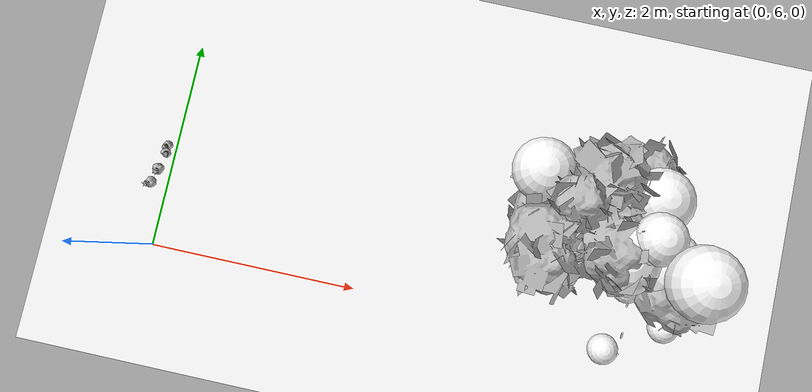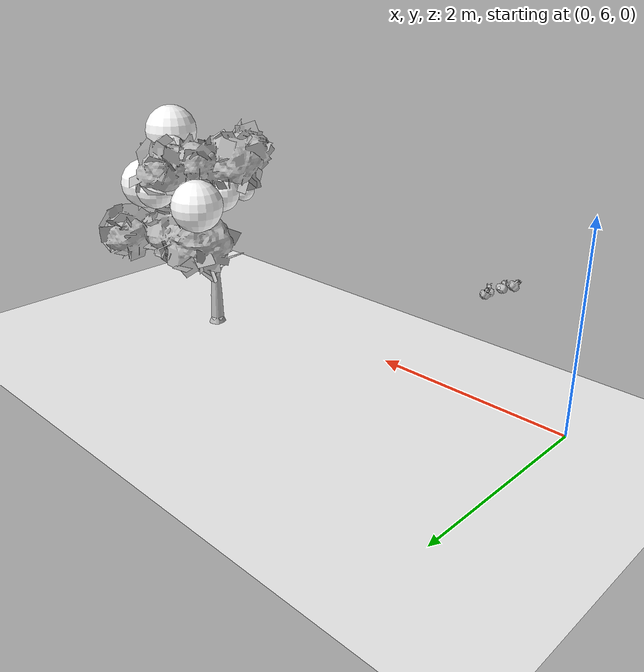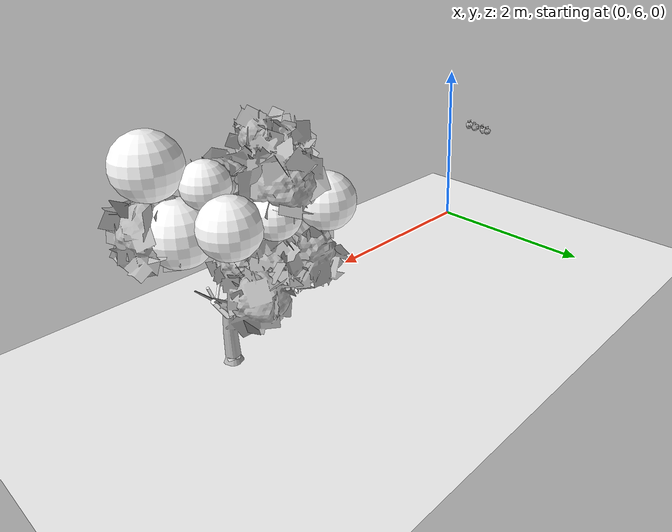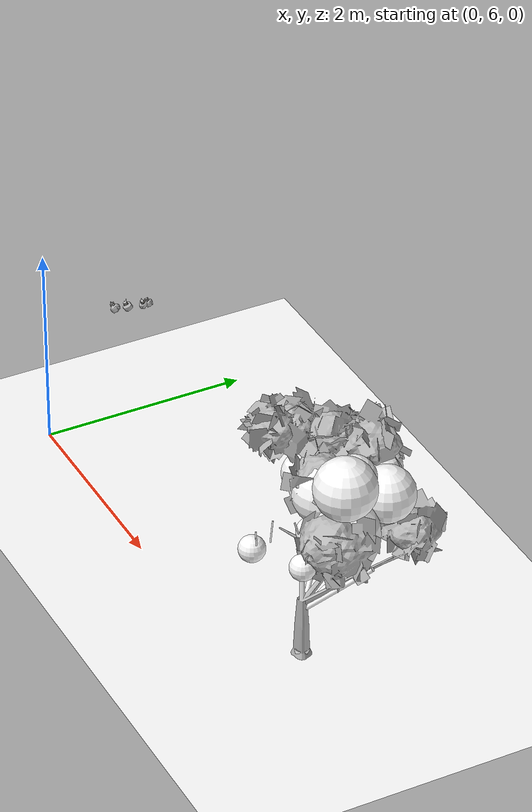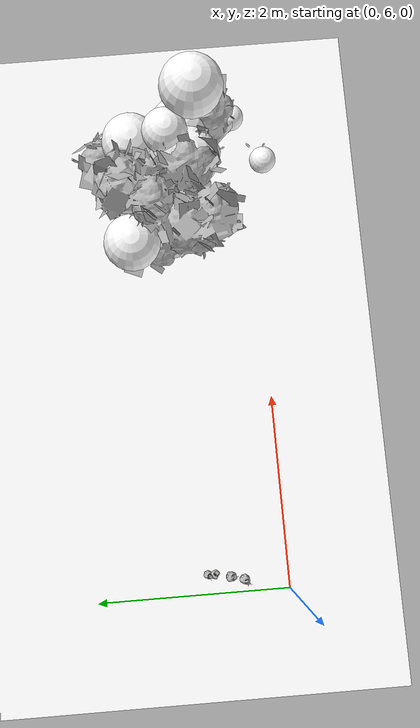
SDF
<sdf version="1.11">
 <world name="peach_orchard">
  <model name="ground">
   <static>true</static>
   <link name="link">
    <visual name="soil">
     <geometry><plane><normal>0 0 1</normal><size>32 22</size></plane></geometry>
     <material>
      <ambient>1 1 1 1</ambient>
      <diffuse>1 1 1 1</diffuse>
      <specular>0.1 0.1 0.1 1</specular>
      <pbr>
       <metal>
        <albedo_map>textures/soil_albedo.png</albedo_map>
        <normal_map type="tangent">textures/soil_normal.png</normal_map>
        <roughness>0.95</roughness>
        <metalness>0</metalness>
       </metal>
      </pbr>
     </material>
    </visual>
    <collision name="c_soil">
     <geometry><plane><normal>0 0 1</normal><size>32 22</size></plane></geometry>
    </collision>
   </link>
  </model>
  <model name="tree_r3_t6">
   <pose>4 6.6 0 0 0 0</pose>
   <static>true</static>
   <link name="link">
    <visual name="tree_mesh">
     <pose>0 0 0 0 0 0.230714</pose>
     <geometry>
      <mesh><uri>model://peach_sim/meshes/peach_tree_a.glb</uri><scale>1.05553 1.05553 1.05553</scale></mesh>
     </geometry>
    </visual>
    <visual name="trunk_0">
     <pose>0 0 0.144905 0 0 0</pose>
     <geometry><cylinder><radius>0.0476876</radius><length>0.28981</length></cylinder></geometry>
     <material>
      <ambient>1 1 1 1</ambient>
      <diffuse>1 1 1 1</diffuse>
      <specular>0.1 0.1 0.1 1</specular>
      <pbr>
       <metal>
        <albedo_map>textures/bark_albedo.png</albedo_map>
        <normal_map type="tangent">textures/bark_normal.png</normal_map>
        <roughness>0.9</roughness>
        <metalness>0</metalness>
       </metal>
      </pbr>
     </material>
    </visual>
    <collision name="c_trunk_0">
     <pose>0 0 0.144905 0 0 0</pose>
     <geometry><cylinder><radius>0.0476876</radius><length>0.28981</length></cylinder></geometry>
    </collision>
    <visual name="trunk_1">
     <pose>0 0 0.408369 0 0 0</pose>
     <geometry><cylinder><radius>0.034335</radius><length>0.237117</length></cylinder></geometry>
     <material>
      <ambient>1 1 1 1</ambient>
      <diffuse>1 1 1 1</diffuse>
      <specular>0.1 0.1 0.1 1</specular>
      <pbr>
       <metal>
        <albedo_map>textures/bark_albedo.png</albedo_map>
        <normal_map type="tangent">textures/bark_normal.png</normal_map>
        <roughness>0.9</roughness>
        <metalness>0</metalness>
       </metal>
      </pbr>
     </material>
    </visual>
    <collision name="c_trunk_1">
     <pose>0 0 0.408369 0 0 0</pose>
     <geometry><cylinder><radius>0.034335</radius><length>0.237117</length></cylinder></geometry>
    </collision>
    <visual name="root_flare">
     <pose>0 0 0.035 0 0 0</pose>
     <geometry><cylinder><radius>0.069147</radius><length>0.07</length></cylinder></geometry>
     <material>
      <ambient>1 1 1 1</ambient>
      <diffuse>1 1 1 1</diffuse>
      <specular>0.1 0.1 0.1 1</specular>
      <pbr>
       <metal>
        <albedo_map>textures/bark_albedo.png</albedo_map>
        <normal_map type="tangent">textures/bark_normal.png</normal_map>
        <roughness>0.95</roughness>
        <metalness>0</metalness>
       </metal>
      </pbr>
     </material>
    </visual>
    <visual name="scaffold_0">
     <pose>0.0549542 0.28024 0.76478 0 0.795247 1.37716</pose>
     <geometry><cylinder><radius>0.022</radius><length>0.799896</length></cylinder></geometry>
     <material>
      <ambient>1 1 1 1</ambient>
      <diffuse>1 1 1 1</diffuse>
      <specular>0.1 0.1 0.1 1</specular>
      <pbr>
       <metal>
        <albedo_map>textures/bark_albedo.png</albedo_map>
        <normal_map type="tangent">textures/bark_normal.png</normal_map>
        <roughness>0.9</roughness>
        <metalness>0</metalness>
       </metal>
      </pbr>
     </material>
    </visual>
    <collision name="c_scaffold_0">
     <pose>0.0549542 0.28024 0.76478 0 0.795247 1.37716</pose>
     <geometry><cylinder><radius>0.022</radius><length>0.799896</length></cylinder></geometry>
    </collision>
    <visual name="branchlet_0_0">
     <pose>0.121595 0.448033 0.940291 0 0.814581 1.0511</pose>
     <geometry><cylinder><radius>0.012</radius><length>0.284172</length></cylinder></geometry>
     <material>
      <ambient>1 1 1 1</ambient>
      <diffuse>1 1 1 1</diffuse>
      <specular>0.1 0.1 0.1 1</specular>
      <pbr>
       <metal>
        <albedo_map>textures/bark_albedo.png</albedo_map>
        <normal_map type="tangent">textures/bark_normal.png</normal_map>
        <roughness>0.9</roughness>
        <metalness>0</metalness>
       </metal>
      </pbr>
     </material>
    </visual>
    <visual name="branchlet_0_1">
     <pose>0.124138 0.550145 1.07437 0 0.596018 1.15059</pose>
     <geometry><cylinder><radius>0.012</radius><length>0.253022</length></cylinder></geometry>
     <material>
      <ambient>1 1 1 1</ambient>
      <diffuse>1 1 1 1</diffuse>
      <specular>0.1 0.1 0.1 1</specular>
      <pbr>
       <metal>
        <albedo_map>textures/bark_albedo.png</albedo_map>
        <normal_map type="tangent">textures/bark_normal.png</normal_map>
        <roughness>0.9</roughness>
        <metalness>0</metalness>
       </metal>
      </pbr>
     </material>
    </visual>
    <visual name="scaffold_1">
     <pose>0.197207 0.236418 0.760982 0 0.839552 0.875579</pose>
     <geometry><cylinder><radius>0.022</radius><length>0.827225</length></cylinder></geometry>
     <material>
      <ambient>1 1 1 1</ambient>
      <diffuse>1 1 1 1</diffuse>
      <specular>0.1 0.1 0.1 1</specular>
      <pbr>
       <metal>
        <albedo_map>textures/bark_albedo.png</albedo_map>
        <normal_map type="tangent">textures/bark_normal.png</normal_map>
        <roughness>0.9</roughness>
        <metalness>0</metalness>
       </metal>
      </pbr>
     </material>
    </visual>
    <collision name="c_scaffold_1">
     <pose>0.197207 0.236418 0.760982 0 0.839552 0.875579</pose>
     <geometry><cylinder><radius>0.022</radius><length>0.827225</length></cylinder></geometry>
    </collision>
    <visual name="branchlet_1_0">
     <pose>0.346318 0.384959 1.02087 0 0.445768 0.532816</pose>
     <geometry><cylinder><radius>0.012</radius><length>0.267163</length></cylinder></geometry>
     <material>
      <ambient>1 1 1 1</ambient>
      <diffuse>1 1 1 1</diffuse>
      <specular>0.1 0.1 0.1 1</specular>
      <pbr>
       <metal>
        <albedo_map>textures/bark_albedo.png</albedo_map>
        <normal_map type="tangent">textures/bark_normal.png</normal_map>
        <roughness>0.9</roughness>
        <metalness>0</metalness>
       </metal>
      </pbr>
     </material>
    </visual>
    <visual name="branchlet_1_1">
     <pose>0.243844 0.323391 1.06232 0 0.821479 -2.43506</pose>
     <geometry><cylinder><radius>0.012</radius><length>0.323062</length></cylinder></geometry>
     <material>
      <ambient>1 1 1 1</ambient>
      <diffuse>1 1 1 1</diffuse>
      <specular>0.1 0.1 0.1 1</specular>
      <pbr>
       <metal>
        <albedo_map>textures/bark_albedo.png</albedo_map>
        <normal_map type="tangent">textures/bark_normal.png</normal_map>
        <roughness>0.9</roughness>
        <metalness>0</metalness>
       </metal>
      </pbr>
     </material>
    </visual>
    <visual name="scaffold_2">
     <pose>-0.242303 0.24509 0.757369 0 0.901601 2.35048</pose>
     <geometry><cylinder><radius>0.022</radius><length>0.878836</length></cylinder></geometry>
     <material>
      <ambient>1 1 1 1</ambient>
      <diffuse>1 1 1 1</diffuse>
      <specular>0.1 0.1 0.1 1</specular>
      <pbr>
       <metal>
        <albedo_map>textures/bark_albedo.png</albedo_map>
        <normal_map type="tangent">textures/bark_normal.png</normal_map>
        <roughness>0.9</roughness>
        <metalness>0</metalness>
       </metal>
      </pbr>
     </material>
    </visual>
    <collision name="c_scaffold_2">
     <pose>-0.242303 0.24509 0.757369 0 0.901601 2.35048</pose>
     <geometry><cylinder><radius>0.022</radius><length>0.878836</length></cylinder></geometry>
    </collision>
    <visual name="branchlet_2_0">
     <pose>-0.299877 0.182586 0.791454 0 0.976141 -2.70042</pose>
     <geometry><cylinder><radius>0.012</radius><length>0.217286</length></cylinder></geometry>
     <material>
      <ambient>1 1 1 1</ambient>
      <diffuse>1 1 1 1</diffuse>
      <specular>0.1 0.1 0.1 1</specular>
      <pbr>
       <metal>
        <albedo_map>textures/bark_albedo.png</albedo_map>
        <normal_map type="tangent">textures/bark_normal.png</normal_map>
        <roughness>0.9</roughness>
        <metalness>0</metalness>
       </metal>
      </pbr>
     </material>
    </visual>
    <visual name="branchlet_2_1">
     <pose>-0.342231 0.542261 0.917137 0 1.70491 1.15496</pose>
     <geometry><cylinder><radius>0.012</radius><length>0.299038</length></cylinder></geometry>
     <material>
      <ambient>1 1 1 1</ambient>
      <diffuse>1 1 1 1</diffuse>
      <specular>0.1 0.1 0.1 1</specular>
      <pbr>
       <metal>
        <albedo_map>textures/bark_albedo.png</albedo_map>
        <normal_map type="tangent">textures/bark_normal.png</normal_map>
        <roughness>0.9</roughness>
        <metalness>0</metalness>
       </metal>
      </pbr>
     </material>
    </visual>
    <visual name="branchlet_2_2">
     <pose>-0.289051 0.325032 1.0452 0 0.790304 -0.602917</pose>
     <geometry><cylinder><radius>0.012</radius><length>0.345411</length></cylinder></geometry>
     <material>
      <ambient>1 1 1 1</ambient>
      <diffuse>1 1 1 1</diffuse>
      <specular>0.1 0.1 0.1 1</specular>
      <pbr>
       <metal>
        <albedo_map>textures/bark_albedo.png</albedo_map>
        <normal_map type="tangent">textures/bark_normal.png</normal_map>
        <roughness>0.9</roughness>
        <metalness>0</metalness>
       </metal>
      </pbr>
     </material>
    </visual>
    <visual name="canopy_0">
     <pose>0.0739487 0.153682 1.75011 0 0 0</pose>
     <geometry><sphere><radius>0.280064</radius></sphere></geometry>
     <material>
      <ambient>1 1 1 1</ambient>
      <diffuse>1 1 1 1</diffuse>
      <specular>0.1 0.1 0.1 1</specular>
      <pbr>
       <metal>
        <albedo_map>textures/leaf_albedo.png</albedo_map>
        <normal_map type="tangent">textures/leaf_normal.png</normal_map>
        <roughness>0.85</roughness>
        <metalness>0</metalness>
       </metal>
      </pbr>
     </material>
    </visual>
    <collision name="c_canopy_0">
     <pose>0.0739487 0.153682 1.75011 0 0 0</pose>
     <geometry><sphere><radius>0.280064</radius></sphere></geometry>
    </collision>
    <visual name="canopy_1">
     <pose>0.571218 0.0911855 2.14088 0 0 0</pose>
     <geometry><sphere><radius>0.280974</radius></sphere></geometry>
     <material>
      <ambient>1 1 1 1</ambient>
      <diffuse>1 1 1 1</diffuse>
      <specular>0.1 0.1 0.1 1</specular>
      <pbr>
       <metal>
        <albedo_map>textures/leaf_albedo.png</albedo_map>
        <normal_map type="tangent">textures/leaf_normal.png</normal_map>
        <roughness>0.85</roughness>
        <metalness>0</metalness>
       </metal>
      </pbr>
     </material>
    </visual>
    <collision name="c_canopy_1">
     <pose>0.571218 0.0911855 2.14088 0 0 0</pose>
     <geometry><sphere><radius>0.280974</radius></sphere></geometry>
    </collision>
    <visual name="canopy_2">
     <pose>-0.386803 0.205086 1.64155 0 0 0</pose>
     <geometry><sphere><radius>0.197356</radius></sphere></geometry>
     <material>
      <ambient>1 1 1 1</ambient>
      <diffuse>1 1 1 1</diffuse>
      <specular>0.1 0.1 0.1 1</specular>
      <pbr>
       <metal>
        <albedo_map>textures/leaf_albedo.png</albedo_map>
        <normal_map type="tangent">textures/leaf_normal.png</normal_map>
        <roughness>0.85</roughness>
        <metalness>0</metalness>
       </metal>
      </pbr>
     </material>
    </visual>
    <collision name="c_canopy_2">
     <pose>-0.386803 0.205086 1.64155 0 0 0</pose>
     <geometry><sphere><radius>0.197356</radius></sphere></geometry>
    </collision>
    <visual name="canopy_3">
     <pose>-0.0625418 0.774826 1.7346 0 0 0</pose>
     <geometry><sphere><radius>0.20344</radius></sphere></geometry>
     <material>
      <ambient>1 1 1 1</ambient>
      <diffuse>1 1 1 1</diffuse>
      <specular>0.1 0.1 0.1 1</specular>
      <pbr>
       <metal>
        <albedo_map>textures/leaf_albedo.png</albedo_map>
        <normal_map type="tangent">textures/leaf_normal.png</normal_map>
        <roughness>0.85</roughness>
        <metalness>0</metalness>
       </metal>
      </pbr>
     </material>
    </visual>
    <visual name="canopy_4">
     <pose>0.128291 0.253846 1.8358 0 0 0</pose>
     <geometry><sphere><radius>0.209378</radius></sphere></geometry>
     <material>
      <ambient>1 1 1 1</ambient>
      <diffuse>1 1 1 1</diffuse>
      <specular>0.1 0.1 0.1 1</specular>
      <pbr>
       <metal>
        <albedo_map>textures/leaf_albedo.png</albedo_map>
        <normal_map type="tangent">textures/leaf_normal.png</normal_map>
        <roughness>0.85</roughness>
        <metalness>0</metalness>
       </metal>
      </pbr>
     </material>
    </visual>
    <visual name="canopy_5">
     <pose>-0.633509 0.709671 1.65308 0 0 0</pose>
     <geometry><sphere><radius>0.257227</radius></sphere></geometry>
     <material>
      <ambient>1 1 1 1</ambient>
      <diffuse>1 1 1 1</diffuse>
      <specular>0.1 0.1 0.1 1</specular>
      <pbr>
       <metal>
        <albedo_map>textures/leaf_albedo.png</albedo_map>
        <normal_map type="tangent">textures/leaf_normal.png</normal_map>
        <roughness>0.85</roughness>
        <metalness>0</metalness>
       </metal>
      </pbr>
     </material>
    </visual>
    <visual name="canopy_6">
     <pose>0.258693 0.347002 1.96673 0 0 0</pose>
     <geometry><sphere><radius>0.201252</radius></sphere></geometry>
     <material>
      <ambient>1 1 1 1</ambient>
      <diffuse>1 1 1 1</diffuse>
      <specular>0.1 0.1 0.1 1</specular>
      <pbr>
       <metal>
        <albedo_map>textures/leaf_albedo.png</albedo_map>
        <normal_map type="tangent">textures/leaf_normal.png</normal_map>
        <roughness>0.85</roughness>
        <metalness>0</metalness>
       </metal>
      </pbr>
     </material>
    </visual>
    <visual name="canopy_7">
     <pose>0.437204 0.19236 1.56628 0 0 0</pose>
     <geometry><sphere><radius>0.28926</radius></sphere></geometry>
     <material>
      <ambient>1 1 1 1</ambient>
      <diffuse>1 1 1 1</diffuse>
      <specular>0.1 0.1 0.1 1</specular>
      <pbr>
       <metal>
        <albedo_map>textures/leaf_albedo.png</albedo_map>
        <normal_map type="tangent">textures/leaf_normal.png</normal_map>
        <roughness>0.85</roughness>
        <metalness>0</metalness>
       </metal>
      </pbr>
     </material>
    </visual>
    <visual name="canopy_8">
     <pose>-0.30558 0.510881 1.7245 0 0 0</pose>
     <geometry><sphere><radius>0.228986</radius></sphere></geometry>
     <material>
      <ambient>1 1 1 1</ambient>
      <diffuse>1 1 1 1</diffuse>
      <specular>0.1 0.1 0.1 1</specular>
      <pbr>
       <metal>
        <albedo_map>textures/leaf_albedo.png</albedo_map>
        <normal_map type="tangent">textures/leaf_normal.png</normal_map>
        <roughness>0.85</roughness>
        <metalness>0</metalness>
       </metal>
      </pbr>
     </material>
    </visual>
    <visual name="canopy_9">
     <pose>0.281778 0.658787 1.70833 0 0 0</pose>
     <geometry><sphere><radius>0.257571</radius></sphere></geometry>
     <material>
      <ambient>1 1 1 1</ambient>
      <diffuse>1 1 1 1</diffuse>
      <specular>0.1 0.1 0.1 1</specular>
      <pbr>
       <metal>
        <albedo_map>textures/leaf_albedo.png</albedo_map>
        <normal_map type="tangent">textures/leaf_normal.png</normal_map>
        <roughness>0.85</roughness>
        <metalness>0</metalness>
       </metal>
      </pbr>
     </material>
    </visual>
    <visual name="foliage_0">
     <pose>0.202653 -0.0394276 1.49223 0 0 0</pose>
     <geometry><sphere><radius>0.127067</radius></sphere></geometry>
     <material>
      <ambient>1 1 1 1</ambient>
      <diffuse>1 1 1 1</diffuse>
      <specular>0.1 0.1 0.1 1</specular>
      <pbr>
       <metal>
        <albedo_map>textures/leaf_albedo.png</albedo_map>
        <normal_map type="tangent">textures/leaf_normal.png</normal_map>
        <roughness>0.85</roughness>
        <metalness>0</metalness>
       </metal>
      </pbr>
     </material>
    </visual>
    <visual name="foliage_4">
     <pose>0.11673 -0.552518 1.43104 0 0 0</pose>
     <geometry><sphere><radius>0.121667</radius></sphere></geometry>
     <material>
      <ambient>1 1 1 1</ambient>
      <diffuse>1 1 1 1</diffuse>
      <specular>0.1 0.1 0.1 1</specular>
      <pbr>
       <metal>
        <albedo_map>textures/leaf_albedo.png</albedo_map>
        <normal_map type="tangent">textures/leaf_normal.png</normal_map>
        <roughness>0.85</roughness>
        <metalness>0</metalness>
       </metal>
      </pbr>
     </material>
    </visual>
    <visual name="foliage_8">
     <pose>0.54884 -0.291175 1.4348 0 0 0</pose>
     <geometry><sphere><radius>0.1204</radius></sphere></geometry>
     <material>
      <ambient>1 1 1 1</ambient>
      <diffuse>1 1 1 1</diffuse>
      <specular>0.1 0.1 0.1 1</specular>
      <pbr>
       <metal>
        <albedo_map>textures/leaf_albedo.png</albedo_map>
        <normal_map type="tangent">textures/leaf_normal.png</normal_map>
        <roughness>0.85</roughness>
        <metalness>0</metalness>
       </metal>
      </pbr>
     </material>
    </visual>
    <visual name="twig_0">
     <pose>0.188326 0.0460258 1.58992 0 0.552999 -2.84251</pose>
     <geometry><cylinder><radius>0.007</radius><length>0.161125</length></cylinder></geometry>
     <material>
      <ambient>1 1 1 1</ambient>
      <diffuse>1 1 1 1</diffuse>
      <specular>0.1 0.1 0.1 1</specular>
      <pbr>
       <metal>
        <albedo_map>textures/bark_albedo.png</albedo_map>
        <normal_map type="tangent">textures/bark_normal.png</normal_map>
        <roughness>0.9</roughness>
        <metalness>0</metalness>
       </metal>
      </pbr>
     </material>
    </visual>
    <visual name="twig_1">
     <pose>0.203287 0.0224686 1.60252 0 0.302157 2.39298</pose>
     <geometry><cylinder><radius>0.007</radius><length>0.198341</length></cylinder></geometry>
     <material>
      <ambient>1 1 1 1</ambient>
      <diffuse>1 1 1 1</diffuse>
      <specular>0.1 0.1 0.1 1</specular>
      <pbr>
       <metal>
        <albedo_map>textures/bark_albedo.png</albedo_map>
        <normal_map type="tangent">textures/bark_normal.png</normal_map>
        <roughness>0.9</roughness>
        <metalness>0</metalness>
       </metal>
      </pbr>
     </material>
    </visual>
    <visual name="twig_2">
     <pose>0.206416 -0.173066 1.57238 0 0.335356 -2.44769</pose>
     <geometry><cylinder><radius>0.007</radius><length>0.114403</length></cylinder></geometry>
     <material>
      <ambient>1 1 1 1</ambient>
      <diffuse>1 1 1 1</diffuse>
      <specular>0.1 0.1 0.1 1</specular>
      <pbr>
       <metal>
        <albedo_map>textures/bark_albedo.png</albedo_map>
        <normal_map type="tangent">textures/bark_normal.png</normal_map>
        <roughness>0.9</roughness>
        <metalness>0</metalness>
       </metal>
      </pbr>
     </material>
    </visual>
    <visual name="twig_3">
     <pose>0.198853 -0.408426 1.61497 0 0.3291 2.34537</pose>
     <geometry><cylinder><radius>0.007</radius><length>0.192631</length></cylinder></geometry>
     <material>
      <ambient>1 1 1 1</ambient>
      <diffuse>1 1 1 1</diffuse>
      <specular>0.1 0.1 0.1 1</specular>
      <pbr>
       <metal>
        <albedo_map>textures/bark_albedo.png</albedo_map>
        <normal_map type="tangent">textures/bark_normal.png</normal_map>
        <roughness>0.9</roughness>
        <metalness>0</metalness>
       </metal>
      </pbr>
     </material>
    </visual>
    <visual name="twig_4">
     <pose>0.199121 -0.555342 1.59234 0 0.226673 2.91488</pose>
     <geometry><cylinder><radius>0.007</radius><length>0.126423</length></cylinder></geometry>
     <material>
      <ambient>1 1 1 1</ambient>
      <diffuse>1 1 1 1</diffuse>
      <specular>0.1 0.1 0.1 1</specular>
      <pbr>
       <metal>
        <albedo_map>textures/bark_albedo.png</albedo_map>
        <normal_map type="tangent">textures/bark_normal.png</normal_map>
        <roughness>0.9</roughness>
        <metalness>0</metalness>
       </metal>
      </pbr>
     </material>
    </visual>
    <visual name="twig_5">
     <pose>0.494604 0.195962 1.55487 0 0.644193 -2.79811</pose>
     <geometry><cylinder><radius>0.007</radius><length>0.131424</length></cylinder></geometry>
     <material>
      <ambient>1 1 1 1</ambient>
      <diffuse>1 1 1 1</diffuse>
      <specular>0.1 0.1 0.1 1</specular>
      <pbr>
       <metal>
        <albedo_map>textures/bark_albedo.png</albedo_map>
        <normal_map type="tangent">textures/bark_normal.png</normal_map>
        <roughness>0.9</roughness>
        <metalness>0</metalness>
       </metal>
      </pbr>
     </material>
    </visual>
    <visual name="twig_6">
     <pose>0.510922 0.0382512 1.59649 0 0.548234 2.9313</pose>
     <geometry><cylinder><radius>0.007</radius><length>0.161249</length></cylinder></geometry>
     <material>
      <ambient>1 1 1 1</ambient>
      <diffuse>1 1 1 1</diffuse>
      <specular>0.1 0.1 0.1 1</specular>
      <pbr>
       <metal>
        <albedo_map>textures/bark_albedo.png</albedo_map>
        <normal_map type="tangent">textures/bark_normal.png</normal_map>
        <roughness>0.9</roughness>
        <metalness>0</metalness>
       </metal>
      </pbr>
     </material>
    </visual>
    <visual name="twig_7">
     <pose>0.477055 0.00433739 1.59142 0 0.661089 2.97656</pose>
     <geometry><cylinder><radius>0.007</radius><length>0.219505</length></cylinder></geometry>
     <material>
      <ambient>1 1 1 1</ambient>
      <diffuse>1 1 1 1</diffuse>
      <specular>0.1 0.1 0.1 1</specular>
      <pbr>
       <metal>
        <albedo_map>textures/bark_albedo.png</albedo_map>
        <normal_map type="tangent">textures/bark_normal.png</normal_map>
        <roughness>0.9</roughness>
        <metalness>0</metalness>
       </metal>
      </pbr>
     </material>
    </visual>
    <visual name="twig_8">
     <pose>0.515582 -0.222629 1.59339 0 0.486278 -2.73368</pose>
     <geometry><cylinder><radius>0.007</radius><length>0.157715</length></cylinder></geometry>
     <material>
      <ambient>1 1 1 1</ambient>
      <diffuse>1 1 1 1</diffuse>
      <specular>0.1 0.1 0.1 1</specular>
      <pbr>
       <metal>
        <albedo_map>textures/bark_albedo.png</albedo_map>
        <normal_map type="tangent">textures/bark_normal.png</normal_map>
        <roughness>0.9</roughness>
        <metalness>0</metalness>
       </metal>
      </pbr>
     </material>
    </visual>
   </link>
  </model>
  <model name="peach_tree_r2_t6_02">
   <pose>0.355941 6.57664 1.45 0 0.703116 -2.42664</pose>
   <static>true</static>
   <link name="bag">
    <visual name="bag_mesh">
     <pose>0 0 0.0440708 0 0 -0</pose>
     <geometry>
      <mesh><uri>model://peach_sim/meshes/bagged_peach.glb</uri><scale>1.07991 1.21132 1.00161</scale></mesh>
     </geometry>
    </visual>
    <visual name="body">
     <pose>0 0 0.0260708 0 0 0</pose>
     <geometry><ellipsoid><radii>0.0404967 0.0314944 0.0281565</radii></ellipsoid></geometry>
     <material>
      <ambient>1 1 1 1</ambient>
      <diffuse>1 1 1 1</diffuse>
      <specular>0.1 0.1 0.1 1</specular>
      <pbr>
       <metal>
        <albedo_map>textures/paper_bag_albedo.png</albedo_map>
        <normal_map type="tangent">textures/paper_bag_normal.png</normal_map>
        <roughness>0.72</roughness>
        <metalness>0</metalness>
       </metal>
      </pbr>
     </material>
    </visual>
    <visual name="bottom_fold">
     <pose>0 0 0.012 0 0 0.35</pose>
     <geometry><box><size>0.0627699 0.0362186 0.022</size></box></geometry>
     <material>
      <ambient>1 1 1 1</ambient>
      <diffuse>1 1 1 1</diffuse>
      <specular>0.1 0.1 0.1 1</specular>
      <pbr>
       <metal>
        <albedo_map>textures/paper_bag_albedo.png</albedo_map>
        <normal_map type="tangent">textures/paper_bag_normal.png</normal_map>
        <roughness>0.8</roughness>
        <metalness>0</metalness>
       </metal>
      </pbr>
     </material>
    </visual>
    <visual name="fruit">
     <pose>0 0 0.0209689 0 0 0</pose>
     <geometry><sphere><radius>0.0280476</radius></sphere></geometry>
     <material>
      <ambient>1 1 1 1</ambient>
      <diffuse>1 1 1 1</diffuse>
      <specular>0.1 0.1 0.1 1</specular>
      <pbr>
       <metal>
        <albedo_map>textures/fruit_skin_albedo.png</albedo_map>
        <normal_map type="tangent">textures/fruit_skin_normal.png</normal_map>
        <roughness>0.55</roughness>
        <metalness>0</metalness>
       </metal>
      </pbr>
     </material>
    </visual>
    <visual name="neck">
     <pose>0 0 0.0611416 0 0 0</pose>
     <geometry><cylinder><radius>0.013</radius><length>0.018</length></cylinder></geometry>
     <material>
      <ambient>1 1 1 1</ambient>
      <diffuse>1 1 1 1</diffuse>
      <specular>0.1 0.1 0.1 1</specular>
      <pbr>
       <metal>
        <albedo_map>textures/paper_bag_albedo.png</albedo_map>
        <normal_map type="tangent">textures/paper_bag_normal.png</normal_map>
        <roughness>0.75</roughness>
        <metalness>0</metalness>
       </metal>
      </pbr>
     </material>
    </visual>
    <visual name="gather">
     <pose>0 0 0.0421416 0 0 0</pose>
     <geometry><cylinder><radius>0.019</radius><length>0.02</length></cylinder></geometry>
     <material>
      <ambient>1 1 1 1</ambient>
      <diffuse>1 1 1 1</diffuse>
      <specular>0.1 0.1 0.1 1</specular>
      <pbr>
       <metal>
        <albedo_map>textures/paper_bag_albedo.png</albedo_map>
        <normal_map type="tangent">textures/paper_bag_normal.png</normal_map>
        <roughness>0.8</roughness>
        <metalness>0</metalness>
       </metal>
      </pbr>
     </material>
    </visual>
    <visual name="inner_paper">
     <pose>0 0 0.0661416 0 0 0</pose>
     <geometry><cylinder><radius>0.01</radius><length>0.008</length></cylinder></geometry>
     <material>
      <ambient>0.180392 0.14902 0.133333 1</ambient>
      <diffuse>0.180392 0.14902 0.133333 1</diffuse>
      <specular>0.1 0.1 0.1 1</specular>
     </material>
    </visual>
    <visual name="wire_0">
     <pose>0 0 0.0561416 0 0 0</pose>
     <geometry><cylinder><radius>0.0205</radius><length>0.0035</length></cylinder></geometry>
     <material>
      <ambient>0.25 0.25 0.25 1</ambient>
      <diffuse>0.25 0.25 0.25 1</diffuse>
      <specular>0.1 0.1 0.1 1</specular>
     </material>
    </visual>
    <visual name="wire_1">
     <pose>0 0 0.0631416 0 0 0</pose>
     <geometry><cylinder><radius>0.0205</radius><length>0.0035</length></cylinder></geometry>
     <material>
      <ambient>0.25 0.25 0.25 1</ambient>
      <diffuse>0.25 0.25 0.25 1</diffuse>
      <specular>0.1 0.1 0.1 1</specular>
     </material>
    </visual>
    <visual name="wire_tail">
     <pose>0.01 0 0.0641416 0 0.521618 0</pose>
     <geometry><cylinder><radius>0.0012</radius><length>0.026</length></cylinder></geometry>
     <material>
      <ambient>0.25 0.25 0.25 1</ambient>
      <diffuse>0.25 0.25 0.25 1</diffuse>
      <specular>0.1 0.1 0.1 1</specular>
     </material>
    </visual>
    <collision name="c_body">
     <pose>0 0 0.0260708 0 0 0</pose>
     <geometry><cylinder><radius>0.0404967</radius><length>0.0521416</length></cylinder></geometry>
    </collision>
   </link>
  </model>
  <model name="peach_tree_r2_t6_03">
   <pose>0.375185 6.6937 1.45 0 0.49428 -1.68655</pose>
   <static>true</static>
   <link name="bag">
    <visual name="bag_mesh">
     <pose>0 0 0.0457944 0 0 -0</pose>
     <geometry>
      <mesh><uri>model://peach_sim/meshes/bagged_peach.glb</uri><scale>1.08459 1.23427 1.04078</scale></mesh>
     </geometry>
    </visual>
    <visual name="body">
     <pose>0 0 0.0277944 0 0 0</pose>
     <geometry><ellipsoid><radii>0.0406722 0.032091 0.0300179</radii></ellipsoid></geometry>
     <material>
      <ambient>1 1 1 1</ambient>
      <diffuse>1 1 1 1</diffuse>
      <specular>0.1 0.1 0.1 1</specular>
      <pbr>
       <metal>
        <albedo_map>textures/paper_bag_albedo.png</albedo_map>
        <normal_map type="tangent">textures/paper_bag_normal.png</normal_map>
        <roughness>0.72</roughness>
        <metalness>0</metalness>
       </metal>
      </pbr>
     </material>
    </visual>
    <visual name="bottom_fold">
     <pose>0 0 0.012 0 0 0.35</pose>
     <geometry><box><size>0.0630419 0.0369046 0.022</size></box></geometry>
     <material>
      <ambient>1 1 1 1</ambient>
      <diffuse>1 1 1 1</diffuse>
      <specular>0.1 0.1 0.1 1</specular>
      <pbr>
       <metal>
        <albedo_map>textures/paper_bag_albedo.png</albedo_map>
        <normal_map type="tangent">textures/paper_bag_normal.png</normal_map>
        <roughness>0.8</roughness>
        <metalness>0</metalness>
       </metal>
      </pbr>
     </material>
    </visual>
    <visual name="fruit">
     <pose>0 0 0.0198932 0 0 0</pose>
     <geometry><sphere><radius>0.026929</radius></sphere></geometry>
     <material>
      <ambient>1 1 1 1</ambient>
      <diffuse>1 1 1 1</diffuse>
      <specular>0.1 0.1 0.1 1</specular>
      <pbr>
       <metal>
        <albedo_map>textures/fruit_skin_albedo.png</albedo_map>
        <normal_map type="tangent">textures/fruit_skin_normal.png</normal_map>
        <roughness>0.55</roughness>
        <metalness>0</metalness>
       </metal>
      </pbr>
     </material>
    </visual>
    <visual name="neck">
     <pose>0 0 0.0645887 0 0 0</pose>
     <geometry><cylinder><radius>0.013</radius><length>0.018</length></cylinder></geometry>
     <material>
      <ambient>1 1 1 1</ambient>
      <diffuse>1 1 1 1</diffuse>
      <specular>0.1 0.1 0.1 1</specular>
      <pbr>
       <metal>
        <albedo_map>textures/paper_bag_albedo.png</albedo_map>
        <normal_map type="tangent">textures/paper_bag_normal.png</normal_map>
        <roughness>0.75</roughness>
        <metalness>0</metalness>
       </metal>
      </pbr>
     </material>
    </visual>
    <visual name="gather">
     <pose>0 0 0.0455887 0 0 0</pose>
     <geometry><cylinder><radius>0.019</radius><length>0.02</length></cylinder></geometry>
     <material>
      <ambient>1 1 1 1</ambient>
      <diffuse>1 1 1 1</diffuse>
      <specular>0.1 0.1 0.1 1</specular>
      <pbr>
       <metal>
        <albedo_map>textures/paper_bag_albedo.png</albedo_map>
        <normal_map type="tangent">textures/paper_bag_normal.png</normal_map>
        <roughness>0.8</roughness>
        <metalness>0</metalness>
       </metal>
      </pbr>
     </material>
    </visual>
    <visual name="inner_paper">
     <pose>0 0 0.0695887 0 0 0</pose>
     <geometry><cylinder><radius>0.01</radius><length>0.008</length></cylinder></geometry>
     <material>
      <ambient>0.180392 0.14902 0.133333 1</ambient>
      <diffuse>0.180392 0.14902 0.133333 1</diffuse>
      <specular>0.1 0.1 0.1 1</specular>
     </material>
    </visual>
    <visual name="wire_0">
     <pose>0 0 0.0595887 0 0 0</pose>
     <geometry><cylinder><radius>0.0205</radius><length>0.0035</length></cylinder></geometry>
     <material>
      <ambient>0.25 0.25 0.25 1</ambient>
      <diffuse>0.25 0.25 0.25 1</diffuse>
      <specular>0.1 0.1 0.1 1</specular>
     </material>
    </visual>
    <visual name="wire_1">
     <pose>0 0 0.0665887 0 0 0</pose>
     <geometry><cylinder><radius>0.0205</radius><length>0.0035</length></cylinder></geometry>
     <material>
      <ambient>0.25 0.25 0.25 1</ambient>
      <diffuse>0.25 0.25 0.25 1</diffuse>
      <specular>0.1 0.1 0.1 1</specular>
     </material>
    </visual>
    <visual name="wire_tail">
     <pose>0.01 0 0.0675887 0 0.521618 0</pose>
     <geometry><cylinder><radius>0.0012</radius><length>0.026</length></cylinder></geometry>
     <material>
      <ambient>0.25 0.25 0.25 1</ambient>
      <diffuse>0.25 0.25 0.25 1</diffuse>
      <specular>0.1 0.1 0.1 1</specular>
     </material>
    </visual>
    <collision name="c_body">
     <pose>0 0 0.0277944 0 0 0</pose>
     <geometry><cylinder><radius>0.0406722</radius><length>0.0555887</length></cylinder></geometry>
    </collision>
   </link>
  </model>
  <model name="peach_tree_r2_t6_04">
   <pose>0.395995 6.82727 1.45 0 0.37893 -0.824672</pose>
   <static>true</static>
   <link name="bag">
    <visual name="bag_mesh">
     <pose>0 0 0.0440394 0 0 -0</pose>
     <geometry>
      <mesh><uri>model://peach_sim/meshes/bagged_peach.glb</uri><scale>0.954807 1.05938 1.00089</scale></mesh>
     </geometry>
    </visual>
    <visual name="body">
     <pose>0 0 0.0260394 0 0 0</pose>
     <geometry><ellipsoid><radii>0.0358053 0.0275439 0.0281225</radii></ellipsoid></geometry>
     <material>
      <ambient>1 1 1 1</ambient>
      <diffuse>1 1 1 1</diffuse>
      <specular>0.1 0.1 0.1 1</specular>
      <pbr>
       <metal>
        <albedo_map>textures/paper_bag_albedo.png</albedo_map>
        <normal_map type="tangent">textures/paper_bag_normal.png</normal_map>
        <roughness>0.72</roughness>
        <metalness>0</metalness>
       </metal>
      </pbr>
     </material>
    </visual>
    <visual name="bottom_fold">
     <pose>0 0 0.012 0 0 0.35</pose>
     <geometry><box><size>0.0554982 0.0316755 0.022</size></box></geometry>
     <material>
      <ambient>1 1 1 1</ambient>
      <diffuse>1 1 1 1</diffuse>
      <specular>0.1 0.1 0.1 1</specular>
      <pbr>
       <metal>
        <albedo_map>textures/paper_bag_albedo.png</albedo_map>
        <normal_map type="tangent">textures/paper_bag_normal.png</normal_map>
        <roughness>0.8</roughness>
        <metalness>0</metalness>
       </metal>
      </pbr>
     </material>
    </visual>
    <visual name="fruit">
     <pose>0 0 0.0193388 0 0 0</pose>
     <geometry><sphere><radius>0.0263523</radius></sphere></geometry>
     <material>
      <ambient>1 1 1 1</ambient>
      <diffuse>1 1 1 1</diffuse>
      <specular>0.1 0.1 0.1 1</specular>
      <pbr>
       <metal>
        <albedo_map>textures/fruit_skin_albedo.png</albedo_map>
        <normal_map type="tangent">textures/fruit_skin_normal.png</normal_map>
        <roughness>0.55</roughness>
        <metalness>0</metalness>
       </metal>
      </pbr>
     </material>
    </visual>
    <visual name="neck">
     <pose>0 0 0.0610787 0 0 0</pose>
     <geometry><cylinder><radius>0.013</radius><length>0.018</length></cylinder></geometry>
     <material>
      <ambient>1 1 1 1</ambient>
      <diffuse>1 1 1 1</diffuse>
      <specular>0.1 0.1 0.1 1</specular>
      <pbr>
       <metal>
        <albedo_map>textures/paper_bag_albedo.png</albedo_map>
        <normal_map type="tangent">textures/paper_bag_normal.png</normal_map>
        <roughness>0.75</roughness>
        <metalness>0</metalness>
       </metal>
      </pbr>
     </material>
    </visual>
    <visual name="gather">
     <pose>0 0 0.0420787 0 0 0</pose>
     <geometry><cylinder><radius>0.019</radius><length>0.02</length></cylinder></geometry>
     <material>
      <ambient>1 1 1 1</ambient>
      <diffuse>1 1 1 1</diffuse>
      <specular>0.1 0.1 0.1 1</specular>
      <pbr>
       <metal>
        <albedo_map>textures/paper_bag_albedo.png</albedo_map>
        <normal_map type="tangent">textures/paper_bag_normal.png</normal_map>
        <roughness>0.8</roughness>
        <metalness>0</metalness>
       </metal>
      </pbr>
     </material>
    </visual>
    <visual name="inner_paper">
     <pose>0 0 0.0660787 0 0 0</pose>
     <geometry><cylinder><radius>0.01</radius><length>0.008</length></cylinder></geometry>
     <material>
      <ambient>0.180392 0.14902 0.133333 1</ambient>
      <diffuse>0.180392 0.14902 0.133333 1</diffuse>
      <specular>0.1 0.1 0.1 1</specular>
     </material>
    </visual>
    <visual name="wire_0">
     <pose>0 0 0.0560787 0 0 0</pose>
     <geometry><cylinder><radius>0.0205</radius><length>0.0035</length></cylinder></geometry>
     <material>
      <ambient>0.25 0.25 0.25 1</ambient>
      <diffuse>0.25 0.25 0.25 1</diffuse>
      <specular>0.1 0.1 0.1 1</specular>
     </material>
    </visual>
    <visual name="wire_1">
     <pose>0 0 0.0630787 0 0 0</pose>
     <geometry><cylinder><radius>0.0205</radius><length>0.0035</length></cylinder></geometry>
     <material>
      <ambient>0.25 0.25 0.25 1</ambient>
      <diffuse>0.25 0.25 0.25 1</diffuse>
      <specular>0.1 0.1 0.1 1</specular>
     </material>
    </visual>
    <visual name="wire_tail">
     <pose>0.01 0 0.0640787 0 0.521618 0</pose>
     <geometry><cylinder><radius>0.0012</radius><length>0.026</length></cylinder></geometry>
     <material>
      <ambient>0.25 0.25 0.25 1</ambient>
      <diffuse>0.25 0.25 0.25 1</diffuse>
      <specular>0.1 0.1 0.1 1</specular>
     </material>
    </visual>
    <collision name="c_body">
     <pose>0 0 0.0260394 0 0 0</pose>
     <geometry><cylinder><radius>0.0358053</radius><length>0.0520787</length></cylinder></geometry>
    </collision>
   </link>
  </model>
  <model name="peach_tree_r2_t6_05">
   <pose>0.41167 6.88734 1.45 0 0.484245 -2.24714</pose>
   <static>true</static>
   <link name="bag">
    <visual name="bag_mesh">
     <pose>0 0 0.0408619 0 0 -0</pose>
     <geometry>
      <mesh><uri>model://peach_sim/meshes/bagged_peach.glb</uri><scale>0.929602 0.999673 0.92868</scale></mesh>
     </geometry>
    </visual>
    <visual name="body">
     <pose>0 0 0.0228619 0 0 0</pose>
     <geometry><ellipsoid><radii>0.0348601 0.0259915 0.0246909</radii></ellipsoid></geometry>
     <material>
      <ambient>1 1 1 1</ambient>
      <diffuse>1 1 1 1</diffuse>
      <specular>0.1 0.1 0.1 1</specular>
      <pbr>
       <metal>
        <albedo_map>textures/paper_bag_albedo.png</albedo_map>
        <normal_map type="tangent">textures/paper_bag_normal.png</normal_map>
        <roughness>0.72</roughness>
        <metalness>0</metalness>
       </metal>
      </pbr>
     </material>
    </visual>
    <visual name="bottom_fold">
     <pose>0 0 0.012 0 0 0.35</pose>
     <geometry><box><size>0.0540331 0.0298902 0.022</size></box></geometry>
     <material>
      <ambient>1 1 1 1</ambient>
      <diffuse>1 1 1 1</diffuse>
      <specular>0.1 0.1 0.1 1</specular>
      <pbr>
       <metal>
        <albedo_map>textures/paper_bag_albedo.png</albedo_map>
        <normal_map type="tangent">textures/paper_bag_normal.png</normal_map>
        <roughness>0.8</roughness>
        <metalness>0</metalness>
       </metal>
      </pbr>
     </material>
    </visual>
    <visual name="fruit">
     <pose>0 0 0.0185626 0 0 0</pose>
     <geometry><sphere><radius>0.0255451</radius></sphere></geometry>
     <material>
      <ambient>1 1 1 1</ambient>
      <diffuse>1 1 1 1</diffuse>
      <specular>0.1 0.1 0.1 1</specular>
      <pbr>
       <metal>
        <albedo_map>textures/fruit_skin_albedo.png</albedo_map>
        <normal_map type="tangent">textures/fruit_skin_normal.png</normal_map>
        <roughness>0.55</roughness>
        <metalness>0</metalness>
       </metal>
      </pbr>
     </material>
    </visual>
    <visual name="neck">
     <pose>0 0 0.0547239 0 0 0</pose>
     <geometry><cylinder><radius>0.013</radius><length>0.018</length></cylinder></geometry>
     <material>
      <ambient>1 1 1 1</ambient>
      <diffuse>1 1 1 1</diffuse>
      <specular>0.1 0.1 0.1 1</specular>
      <pbr>
       <metal>
        <albedo_map>textures/paper_bag_albedo.png</albedo_map>
        <normal_map type="tangent">textures/paper_bag_normal.png</normal_map>
        <roughness>0.75</roughness>
        <metalness>0</metalness>
       </metal>
      </pbr>
     </material>
    </visual>
    <visual name="gather">
     <pose>0 0 0.0357239 0 0 0</pose>
     <geometry><cylinder><radius>0.019</radius><length>0.02</length></cylinder></geometry>
     <material>
      <ambient>1 1 1 1</ambient>
      <diffuse>1 1 1 1</diffuse>
      <specular>0.1 0.1 0.1 1</specular>
      <pbr>
       <metal>
        <albedo_map>textures/paper_bag_albedo.png</albedo_map>
        <normal_map type="tangent">textures/paper_bag_normal.png</normal_map>
        <roughness>0.8</roughness>
        <metalness>0</metalness>
       </metal>
      </pbr>
     </material>
    </visual>
    <visual name="inner_paper">
     <pose>0 0 0.0597239 0 0 0</pose>
     <geometry><cylinder><radius>0.01</radius><length>0.008</length></cylinder></geometry>
     <material>
      <ambient>0.180392 0.14902 0.133333 1</ambient>
      <diffuse>0.180392 0.14902 0.133333 1</diffuse>
      <specular>0.1 0.1 0.1 1</specular>
     </material>
    </visual>
    <visual name="wire_0">
     <pose>0 0 0.0497239 0 0 0</pose>
     <geometry><cylinder><radius>0.0205</radius><length>0.0035</length></cylinder></geometry>
     <material>
      <ambient>0.25 0.25 0.25 1</ambient>
      <diffuse>0.25 0.25 0.25 1</diffuse>
      <specular>0.1 0.1 0.1 1</specular>
     </material>
    </visual>
    <visual name="wire_1">
     <pose>0 0 0.0567239 0 0 0</pose>
     <geometry><cylinder><radius>0.0205</radius><length>0.0035</length></cylinder></geometry>
     <material>
      <ambient>0.25 0.25 0.25 1</ambient>
      <diffuse>0.25 0.25 0.25 1</diffuse>
      <specular>0.1 0.1 0.1 1</specular>
     </material>
    </visual>
    <visual name="wire_tail">
     <pose>0.01 0 0.0577239 0 0.521618 0</pose>
     <geometry><cylinder><radius>0.0012</radius><length>0.026</length></cylinder></geometry>
     <material>
      <ambient>0.25 0.25 0.25 1</ambient>
      <diffuse>0.25 0.25 0.25 1</diffuse>
      <specular>0.1 0.1 0.1 1</specular>
     </material>
    </visual>
    <collision name="c_body">
     <pose>0 0 0.0228619 0 0 0</pose>
     <geometry><cylinder><radius>0.0348601</radius><length>0.0457239</length></cylinder></geometry>
    </collision>
   </link>
  </model>
  <model name="peach_tree_r3_t6_00">
   <pose>4.22 6.64963 1.45 0 0.172914 0.791156</pose>
   <static>true</static>
   <link name="bag">
    <visual name="bag_mesh">
     <pose>0 0 0.0452217 0 0 0</pose>
     <geometry>
      <mesh><uri>model://peach_sim/meshes/bagged_peach.glb</uri><scale>1.0371 1.18972 1.02777</scale></mesh>
     </geometry>
    </visual>
    <visual name="body">
     <pose>0 0 0.0272217 0 0 0</pose>
     <geometry><ellipsoid><radii>0.0388914 0.0309328 0.0293994</radii></ellipsoid></geometry>
     <material>
      <ambient>1 1 1 1</ambient>
      <diffuse>1 1 1 1</diffuse>
      <specular>0.1 0.1 0.1 1</specular>
      <pbr>
       <metal>
        <albedo_map>textures/paper_bag_albedo.png</albedo_map>
        <normal_map type="tangent">textures/paper_bag_normal.png</normal_map>
        <roughness>0.72</roughness>
        <metalness>0</metalness>
       </metal>
      </pbr>
     </material>
    </visual>
    <visual name="bottom_fold">
     <pose>0 0 0.012 0 0 0.35</pose>
     <geometry><box><size>0.0602816 0.0355728 0.022</size></box></geometry>
     <material>
      <ambient>1 1 1 1</ambient>
      <diffuse>1 1 1 1</diffuse>
      <specular>0.1 0.1 0.1 1</specular>
      <pbr>
       <metal>
        <albedo_map>textures/paper_bag_albedo.png</albedo_map>
        <normal_map type="tangent">textures/paper_bag_normal.png</normal_map>
        <roughness>0.8</roughness>
        <metalness>0</metalness>
       </metal>
      </pbr>
     </material>
    </visual>
    <visual name="fruit">
     <pose>0 0 0.0210832 0 0 0</pose>
     <geometry><sphere><radius>0.0281665</radius></sphere></geometry>
     <material>
      <ambient>1 1 1 1</ambient>
      <diffuse>1 1 1 1</diffuse>
      <specular>0.1 0.1 0.1 1</specular>
      <pbr>
       <metal>
        <albedo_map>textures/fruit_skin_albedo.png</albedo_map>
        <normal_map type="tangent">textures/fruit_skin_normal.png</normal_map>
        <roughness>0.55</roughness>
        <metalness>0</metalness>
       </metal>
      </pbr>
     </material>
    </visual>
    <visual name="neck">
     <pose>0 0 0.0634434 0 0 0</pose>
     <geometry><cylinder><radius>0.013</radius><length>0.018</length></cylinder></geometry>
     <material>
      <ambient>1 1 1 1</ambient>
      <diffuse>1 1 1 1</diffuse>
      <specular>0.1 0.1 0.1 1</specular>
      <pbr>
       <metal>
        <albedo_map>textures/paper_bag_albedo.png</albedo_map>
        <normal_map type="tangent">textures/paper_bag_normal.png</normal_map>
        <roughness>0.75</roughness>
        <metalness>0</metalness>
       </metal>
      </pbr>
     </material>
    </visual>
    <visual name="gather">
     <pose>0 0 0.0444434 0 0 0</pose>
     <geometry><cylinder><radius>0.019</radius><length>0.02</length></cylinder></geometry>
     <material>
      <ambient>1 1 1 1</ambient>
      <diffuse>1 1 1 1</diffuse>
      <specular>0.1 0.1 0.1 1</specular>
      <pbr>
       <metal>
        <albedo_map>textures/paper_bag_albedo.png</albedo_map>
        <normal_map type="tangent">textures/paper_bag_normal.png</normal_map>
        <roughness>0.8</roughness>
        <metalness>0</metalness>
       </metal>
      </pbr>
     </material>
    </visual>
    <visual name="inner_paper">
     <pose>0 0 0.0684434 0 0 0</pose>
     <geometry><cylinder><radius>0.01</radius><length>0.008</length></cylinder></geometry>
     <material>
      <ambient>0.180392 0.14902 0.133333 1</ambient>
      <diffuse>0.180392 0.14902 0.133333 1</diffuse>
      <specular>0.1 0.1 0.1 1</specular>
     </material>
    </visual>
    <visual name="wire_0">
     <pose>0 0 0.0584434 0 0 0</pose>
     <geometry><cylinder><radius>0.0205</radius><length>0.0035</length></cylinder></geometry>
     <material>
      <ambient>0.25 0.25 0.25 1</ambient>
      <diffuse>0.25 0.25 0.25 1</diffuse>
      <specular>0.1 0.1 0.1 1</specular>
     </material>
    </visual>
    <visual name="wire_1">
     <pose>0 0 0.0654434 0 0 0</pose>
     <geometry><cylinder><radius>0.0205</radius><length>0.0035</length></cylinder></geometry>
     <material>
      <ambient>0.25 0.25 0.25 1</ambient>
      <diffuse>0.25 0.25 0.25 1</diffuse>
      <specular>0.1 0.1 0.1 1</specular>
     </material>
    </visual>
    <visual name="wire_tail">
     <pose>0.01 0 0.0664434 0 0.521618 0</pose>
     <geometry><cylinder><radius>0.0012</radius><length>0.026</length></cylinder></geometry>
     <material>
      <ambient>0.25 0.25 0.25 1</ambient>
      <diffuse>0.25 0.25 0.25 1</diffuse>
      <specular>0.1 0.1 0.1 1</specular>
     </material>
    </visual>
    <collision name="c_body">
     <pose>0 0 0.0272217 0 0 0</pose>
     <geometry><cylinder><radius>0.0388914</radius><length>0.0544434</length></cylinder></geometry>
    </collision>
   </link>
  </model>
  <model name="peach_tree_r3_t6_01">
   <pose>4.22 6.56064 1.45 0 0.628365 1.45377</pose>
   <static>true</static>
   <link name="bag">
    <visual name="bag_mesh">
     <pose>0 0 0.0447504 0 0 0</pose>
     <geometry>
      <mesh><uri>model://peach_sim/meshes/bagged_peach.glb</uri><scale>1.01438 1.11016 1.01705</scale></mesh>
     </geometry>
    </visual>
    <visual name="body">
     <pose>0 0 0.0267504 0 0 0</pose>
     <geometry><ellipsoid><radii>0.0380393 0.0288642 0.0288904</radii></ellipsoid></geometry>
     <material>
      <ambient>1 1 1 1</ambient>
      <diffuse>1 1 1 1</diffuse>
      <specular>0.1 0.1 0.1 1</specular>
      <pbr>
       <metal>
        <albedo_map>textures/paper_bag_albedo.png</albedo_map>
        <normal_map type="tangent">textures/paper_bag_normal.png</normal_map>
        <roughness>0.72</roughness>
        <metalness>0</metalness>
       </metal>
      </pbr>
     </material>
    </visual>
    <visual name="bottom_fold">
     <pose>0 0 0.012 0 0 0.35</pose>
     <geometry><box><size>0.058961 0.0331939 0.022</size></box></geometry>
     <material>
      <ambient>1 1 1 1</ambient>
      <diffuse>1 1 1 1</diffuse>
      <specular>0.1 0.1 0.1 1</specular>
      <pbr>
       <metal>
        <albedo_map>textures/paper_bag_albedo.png</albedo_map>
        <normal_map type="tangent">textures/paper_bag_normal.png</normal_map>
        <roughness>0.8</roughness>
        <metalness>0</metalness>
       </metal>
      </pbr>
     </material>
    </visual>
    <visual name="fruit">
     <pose>0 0 0.018061 0 0 0</pose>
     <geometry><sphere><radius>0.0250234</radius></sphere></geometry>
     <material>
      <ambient>1 1 1 1</ambient>
      <diffuse>1 1 1 1</diffuse>
      <specular>0.1 0.1 0.1 1</specular>
      <pbr>
       <metal>
        <albedo_map>textures/fruit_skin_albedo.png</albedo_map>
        <normal_map type="tangent">textures/fruit_skin_normal.png</normal_map>
        <roughness>0.55</roughness>
        <metalness>0</metalness>
       </metal>
      </pbr>
     </material>
    </visual>
    <visual name="neck">
     <pose>0 0 0.0625008 0 0 0</pose>
     <geometry><cylinder><radius>0.013</radius><length>0.018</length></cylinder></geometry>
     <material>
      <ambient>1 1 1 1</ambient>
      <diffuse>1 1 1 1</diffuse>
      <specular>0.1 0.1 0.1 1</specular>
      <pbr>
       <metal>
        <albedo_map>textures/paper_bag_albedo.png</albedo_map>
        <normal_map type="tangent">textures/paper_bag_normal.png</normal_map>
        <roughness>0.75</roughness>
        <metalness>0</metalness>
       </metal>
      </pbr>
     </material>
    </visual>
    <visual name="gather">
     <pose>0 0 0.0435008 0 0 0</pose>
     <geometry><cylinder><radius>0.019</radius><length>0.02</length></cylinder></geometry>
     <material>
      <ambient>1 1 1 1</ambient>
      <diffuse>1 1 1 1</diffuse>
      <specular>0.1 0.1 0.1 1</specular>
      <pbr>
       <metal>
        <albedo_map>textures/paper_bag_albedo.png</albedo_map>
        <normal_map type="tangent">textures/paper_bag_normal.png</normal_map>
        <roughness>0.8</roughness>
        <metalness>0</metalness>
       </metal>
      </pbr>
     </material>
    </visual>
    <visual name="inner_paper">
     <pose>0 0 0.0675008 0 0 0</pose>
     <geometry><cylinder><radius>0.01</radius><length>0.008</length></cylinder></geometry>
     <material>
      <ambient>0.180392 0.14902 0.133333 1</ambient>
      <diffuse>0.180392 0.14902 0.133333 1</diffuse>
      <specular>0.1 0.1 0.1 1</specular>
     </material>
    </visual>
    <visual name="wire_0">
     <pose>0 0 0.0575008 0 0 0</pose>
     <geometry><cylinder><radius>0.0205</radius><length>0.0035</length></cylinder></geometry>
     <material>
      <ambient>0.25 0.25 0.25 1</ambient>
      <diffuse>0.25 0.25 0.25 1</diffuse>
      <specular>0.1 0.1 0.1 1</specular>
     </material>
    </visual>
    <visual name="wire_1">
     <pose>0 0 0.0645008 0 0 0</pose>
     <geometry><cylinder><radius>0.0205</radius><length>0.0035</length></cylinder></geometry>
     <material>
      <ambient>0.25 0.25 0.25 1</ambient>
      <diffuse>0.25 0.25 0.25 1</diffuse>
      <specular>0.1 0.1 0.1 1</specular>
     </material>
    </visual>
    <visual name="wire_tail">
     <pose>0.01 0 0.0655008 0 0.521618 0</pose>
     <geometry><cylinder><radius>0.0012</radius><length>0.026</length></cylinder></geometry>
     <material>
      <ambient>0.25 0.25 0.25 1</ambient>
      <diffuse>0.25 0.25 0.25 1</diffuse>
      <specular>0.1 0.1 0.1 1</specular>
     </material>
    </visual>
    <collision name="c_body">
     <pose>0 0 0.0267504 0 0 0</pose>
     <geometry><cylinder><radius>0.0380393</radius><length>0.0535008</length></cylinder></geometry>
    </collision>
   </link>
  </model>
 </world>
</sdf>
